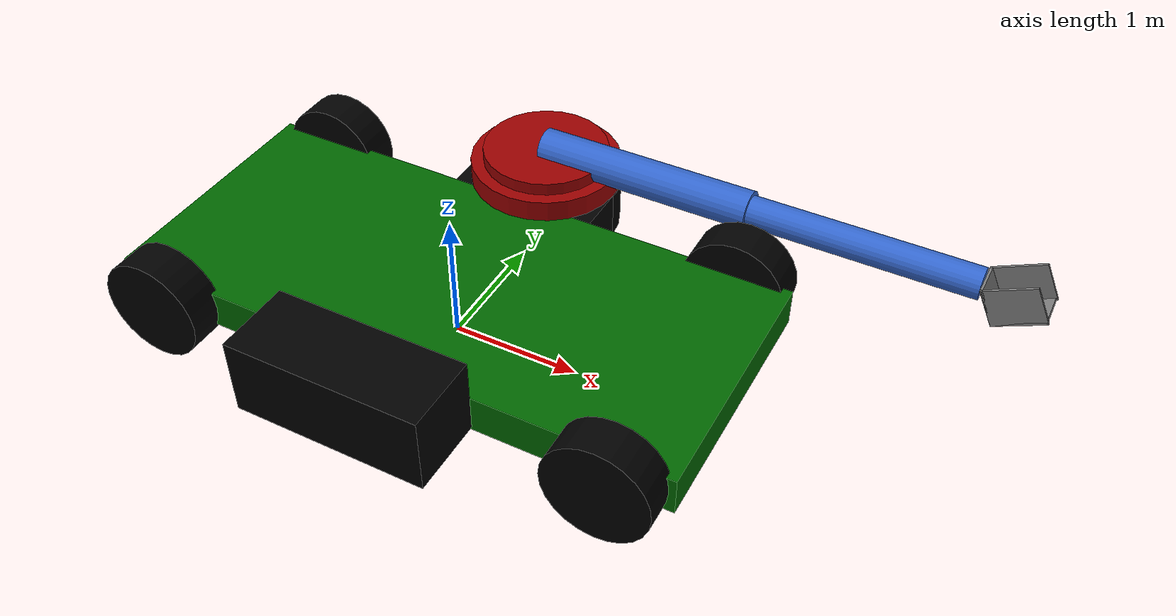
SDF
<?xml version='1.0'?>
<sdf version='1.7'>
  <model name='greendigger_complete'>
    <static>false</static>
    <link name='base_link'>
      <pose>0 0 0.38 0 0 0</pose>
      <inertial>
        <mass>500.0</mass>
        <inertia><ixx>50.0</ixx><ixy>0</ixy><ixz>0</ixz><iyy>50.0</iyy><iyz>0</iyz><izz>50.0</izz></inertia>
      </inertial>
      <visual name='chassis_visual'>
        <geometry><box><size>4.5 2.0 0.3</size></box></geometry>
        <material><ambient>0.0 0.35 0.0 1</ambient><diffuse>0.0 0.4 0.0 1</diffuse></material>
      </visual>
      <visual name='side_pivot_extension_base'>
        <pose>0 1.2 -0.05 0 0 0</pose>
        <geometry><box><size>1.2 0.4 0.4</size></box></geometry>
        <material><ambient>0.0 0.0 0.0 1</ambient><diffuse>0.0 0.0 0.0 1</diffuse></material>
      </visual>

      <visual name='side_pivot_extension_round'>
        <pose>0 1.4 -0.05 0 0 0</pose>
        <geometry><cylinder><radius>0.6</radius><length>0.4</length></cylinder></geometry>
        <material><ambient>0.0 0.0 0.0 1</ambient><diffuse>0.0 0.0 0.0 1</diffuse></material>
      </visual>
      <collision name='chassis_collision'>
        <geometry><box><size>4.5 2.0 0.3</size></box></geometry>
      </collision>
    </link>

    <link name='ballast_link'>
      <pose>0 -1.3 0.55 0 0 0</pose>
      <inertial>
        <mass>200.0</mass>
        <inertia><ixx>20.0</ixx><ixy>0</ixy><ixz>0</ixz><iyy>20.0</iyy><iyz>0</iyz><izz>20.0</izz></inertia>
      </inertial>
      <visual name='ballast_visual'>
        <geometry><box><size>1.5 0.6 0.6</size></box></geometry>
        <material><ambient>0.0 0.0 0.0 1</ambient></material>
      </visual>
      <collision name='ballast_collision'>
        <geometry><box><size>1.5 0.6 0.6</size></box></geometry>
      </collision>
    </link>

    <joint name='ballast_joint' type='fixed'>
      <parent>base_link</parent>
      <child>ballast_link</child>
    </joint>

    <link name='wheel_fl'>
      <pose>1.8 1.1 0.4 1.5708 0 0</pose>
      <inertial><mass>2.0</mass><inertia><ixx>0.2</ixx><ixy>0</ixy><ixz>0</ixz><iyy>0.2</iyy><iyz>0</iyz><izz>0.2</izz></inertia></inertial>
      <visual name='visual'><geometry><cylinder><radius>0.4</radius><length>0.3</length></cylinder></geometry><material><ambient>0 0 0 1</ambient></material></visual>
      <collision name='collision'>
        <geometry><cylinder><radius>0.4</radius><length>0.3</length></cylinder></geometry>
        <surface>
          <friction>
            <ode>
              <mu>1.0</mu>
              <mu2>1.0</mu2>
            </ode>
          </friction>
        </surface>
      </collision>
    </link>

    <link name='wheel_fr'>
      <pose>1.8 -1.1 0.4 1.5708 0 0</pose>
      <inertial><mass>2.0</mass><inertia><ixx>0.2</ixx><ixy>0</ixy><ixz>0</ixz><iyy>0.2</iyy><iyz>0</iyz><izz>0.2</izz></inertia></inertial>
      <visual name='visual'><geometry><cylinder><radius>0.4</radius><length>0.3</length></cylinder></geometry><material><ambient>0 0 0 1</ambient></material></visual>
      <collision name='collision'>
        <geometry><cylinder><radius>0.4</radius><length>0.3</length></cylinder></geometry>
        <surface>
          <friction>
            <ode>
              <mu>1.0</mu>
              <mu2>1.0</mu2>
            </ode>
          </friction>
        </surface>
      </collision>
    </link>

    <link name='wheel_rl'>
      <pose>-1.8 1.1 0.4 1.5708 0 0</pose>
      <inertial><mass>2.0</mass><inertia><ixx>0.2</ixx><ixy>0</ixy><ixz>0</ixz><iyy>0.2</iyy><iyz>0</iyz><izz>0.2</izz></inertia></inertial>
      <visual name='visual'><geometry><cylinder><radius>0.4</radius><length>0.3</length></cylinder></geometry><material><ambient>0 0 0 1</ambient></material></visual>
      <collision name='collision'>
        <geometry><cylinder><radius>0.4</radius><length>0.3</length></cylinder></geometry>
        <surface>
          <friction>
            <ode>
              <mu>1.0</mu>
              <mu2>1.0</mu2>
            </ode>
          </friction>
        </surface>
      </collision>
    </link>

    <link name='wheel_rr'>
      <pose>-1.8 -1.1 0.4 1.5708 0 0</pose>
      <inertial><mass>2.0</mass><inertia><ixx>0.2</ixx><ixy>0</ixy><ixz>0</ixz><iyy>0.2</iyy><iyz>0</iyz><izz>0.2</izz></inertia></inertial>
      <visual name='visual'><geometry><cylinder><radius>0.4</radius><length>0.3</length></cylinder></geometry><material><ambient>0 0 0 1</ambient></material></visual>
      <collision name='collision'>
        <geometry><cylinder><radius>0.4</radius><length>0.3</length></cylinder></geometry>
        <surface>
          <friction>
            <ode>
              <mu>1.0</mu>
              <mu2>1.0</mu2>
            </ode>
          </friction>
        </surface>
      </collision>
    </link>

    <joint name='j_fl' type='revolute'>
      <parent>base_link</parent><child>wheel_fl</child>
      <axis><xyz>0 0 1</xyz><dynamics><damping>500.0</damping><friction>500.0</friction></dynamics></axis>
    </joint>
    <joint name='j_fr' type='revolute'>
      <parent>base_link</parent><child>wheel_fr</child>
      <axis><xyz>0 0 1</xyz><dynamics><damping>500.0</damping><friction>500.0</friction></dynamics></axis>
    </joint>
    <joint name='j_rl' type='revolute'>
      <parent>base_link</parent><child>wheel_rl</child>
      <axis><xyz>0 0 1</xyz><dynamics><damping>500.0</damping><friction>500.0</friction></dynamics></axis>
    </joint>
    <joint name='j_rr' type='revolute'>
      <parent>base_link</parent><child>wheel_rr</child>
      <axis><xyz>0 0 1</xyz><dynamics><damping>500.0</damping><friction>500.0</friction></dynamics></axis>
    </joint>

    <link name='slew_disk'>
      <pose>0 1.4 0.6 0 0 0</pose>
      <inertial>
        <mass>5.0</mass>
        <inertia><ixx>0.5</ixx><ixy>0</ixy><ixz>0</ixz><iyy>0.5</iyy><iyz>0</iyz><izz>0.5</izz></inertia>
      </inertial>
      <visual name='slew_base_vis'>
        <geometry><cylinder><radius>0.6</radius><length>0.2</length></cylinder></geometry>
        <material><ambient>0.5 0.0 0.0 1</ambient><diffuse>0.6 0.0 0.0 1</diffuse></material>
      </visual>
      <visual name='slew_top_vis'>
        <pose>0 0 0.15 0 0 0</pose>
        <geometry><cylinder><radius>0.5</radius><length>0.1</length></cylinder></geometry>
        <material><ambient>0.5 0.0 0.0 1</ambient><diffuse>0.6 0.0 0.0 1</diffuse></material>
      </visual>
      <collision name='slew_collision'>
        <geometry><cylinder><radius>0.6</radius><length>0.3</length></cylinder></geometry>
      </collision>
    </link>

    <joint name='slew_joint' type='revolute'>
      <parent>base_link</parent>
      <child>slew_disk</child>
      <axis>
        <xyz>0 0 1</xyz>
        <limit><lower>-3.1415</lower><upper>3.1415</upper><effort>30000</effort><velocity>1.0</velocity></limit>
        <dynamics><damping>20.0</damping><friction>15.0</friction></dynamics>
      </axis>
    </joint>

    <link name="camera_link">
    <pose>0.5 1.56 0.75 0 0 0</pose>

    <inertial>
      <mass>0.2</mass>
      <inertia>
        <ixx>0.001</ixx>
        <iyy>0.001</iyy>
        <izz>0.001</izz>
        <ixy>0</ixy>
        <ixz>0</ixz>
        <iyz>0</iyz>
      </inertia>
    </inertial>

    <visual name="camera_visual">
      <geometry>
        <box>
          <size>0.12 0.08 0.08</size>
        </box>
      </geometry>
      <material>
        <ambient>0 0 0 1</ambient>
        <diffuse>0 0 0 1</diffuse>
      </material>
    </visual>

    <collision name="camera_collision">
      <geometry>
        <box>
          <size>0.12 0.08 0.08</size>
        </box>
      </geometry>
    </collision>

    <sensor name="camera" type="camera">
      <pose>0 0 0 0 0 0</pose>

      <update_rate>30</update_rate>

      <camera>
        <horizontal_fov>1.483</horizontal_fov>

        <image>
          <width>640</width>
          <height>480</height>
          <format>R8G8B8</format>
        </image>

        <clip>
          <near>0.1</near>
          <far>100</far>
        </clip>
      </camera>

      <always_on>true</always_on>
      <visualize>true</visualize>
    </sensor>
  </link>

  <joint name="camera_mount_joint" type="fixed">
    <parent>slew_disk</parent>
    <child>camera_link</child>
  </joint>

    <link name="arm_segment_1">
      <pose>0.865 1.4 0.8 0 1.570796 0</pose>
      <inertial>
        <mass>20.0</mass>
        <inertia><ixx>0.5</ixx><iyy>5.0</iyy><izz>5.0</izz><ixy>0</ixy><ixz>0</ixz><iyz>0</iyz></inertia>
      </inertial>
      <visual name="seg1_visual">
        <geometry><cylinder><radius>0.15</radius><length>1.73</length></cylinder></geometry>
        <material><ambient>0.1 0.2 0.5 1</ambient><diffuse>0.2 0.4 0.8 1</diffuse></material>
      </visual>
      <collision name="seg1_collision">
        <geometry><cylinder><radius>0.15</radius><length>1.73</length></cylinder></geometry>
      </collision>
    </link>

    <joint name="shoulder_joint" type="revolute">
      <parent>slew_disk</parent>
      <child>arm_segment_1</child>
      <pose>0 0 -0.865 0 0 0</pose>
      <axis>
        <xyz>0 1 0</xyz>
        <limit><lower>-1.57</lower><upper>1.57</upper><effort>5000</effort><velocity>1</velocity></limit>
      </axis>
    </joint>

    <link name="arm_segment_2">
      <pose>2.595 1.4 0.8 0 1.570796 0</pose>
      <inertial>
        <mass>15.0</mass>
        <inertia><ixx>0.4</ixx><iyy>4.0</iyy><izz>4.0</izz><ixy>0</ixy><ixz>0</ixz><iyz>0</iyz></inertia>
      </inertial>
      <visual name="seg2_visual">
        <geometry><cylinder><radius>0.12</radius><length>1.73</length></cylinder></geometry>
        <material><ambient>0.1 0.2 0.5 1</ambient><diffuse>0.2 0.4 0.8 1</diffuse></material>
      </visual>
      <collision name="seg2_collision">
        <geometry><cylinder><radius>0.12</radius><length>1.73</length></cylinder></geometry>
      </collision>
    </link>

    <joint name="elbow_joint" type="revolute">
      <parent>arm_segment_1</parent>
      <child>arm_segment_2</child>
      <pose>0 0 -0.865 0 0 0</pose>
      <axis>
        <xyz>0 1 0</xyz>
        <limit><lower>-3.1415</lower><upper>3.1415</upper><effort>2000</effort><velocity>0.5</velocity></limit>
      </axis>
    </joint>

    <link name="front_shovel_block">
      <pose>3.71 1.4 0.8 0 -0.45 0</pose>
      <inertial>
        <mass>5.0</mass>
        <inertia><ixx>0.1</ixx><iyy>0.1</iyy><izz>0.1</izz><ixy>0</ixy><ixz>0</ixz><iyz>0</iyz></inertia>
      </inertial>

      <visual name="shovel_back">
        <pose>-0.19 0 0 0 0 0</pose>
        <geometry><box><size>0.02 0.3 0.3</size></box></geometry>
        <material><ambient>0.4 0.4 0.4 1</ambient><diffuse>0.5 0.5 0.5 1</diffuse></material>
      </visual>
      <visual name="shovel_bottom">
        <pose>0.0 0 -0.14 0 0 0</pose>
        <geometry><box><size>0.38 0.3 0.02</size></box></geometry>
        <material><ambient>0.4 0.4 0.4 1</ambient><diffuse>0.5 0.5 0.5 1</diffuse></material>
      </visual>
      <visual name="shovel_side_left">
        <pose>0.0 0.14 0 0 0 0</pose>
        <geometry><box><size>0.4 0.02 0.3</size></box></geometry>
        <material><ambient>0.4 0.4 0.4 1</ambient><diffuse>0.5 0.5 0.5 1</diffuse></material>
      </visual>
      <visual name="shovel_side_right">
        <pose>0.0 -0.14 0 0 0 0</pose>
        <geometry><box><size>0.4 0.02 0.3</size></box></geometry>
        <material><ambient>0.4 0.4 0.4 1</ambient><diffuse>0.5 0.5 0.5 1</diffuse></material>
      </visual>
    </link>

    <joint name="shovel_joint" type="fixed">
      <parent>arm_segment_2</parent>
      <child>front_shovel_block</child>
      <pose>-0.25 0 0 0 0 0</pose>
    </joint>

    <plugin filename="gz-sim-joint-state-publisher-system" name="gz::sim::systems::JointStatePublisher">
      <joint_name>slew_joint</joint_name>
      <topic>slew_observer</topic>
    </plugin>
    <plugin filename="gz-sim-joint-controller-system" name="gz::sim::systems::JointController">
      <joint_name>slew_joint</joint_name>
      <topic>slew_ctrl</topic>
    </plugin>
    <plugin filename="gz-sim-joint-state-publisher-system" name="gz::sim::systems::JointStatePublisher">
      <joint_name>shoulder_joint</joint_name>
      <topic>shoulder_observer</topic>
    </plugin>
    <plugin filename="gz-sim-joint-controller-system" name="gz::sim::systems::JointController">
      <joint_name>shoulder_joint</joint_name>
      <topic>shoulder_ctrl</topic>
    </plugin>
    <plugin filename="gz-sim-joint-state-publisher-system" name="gz::sim::systems::JointStatePublisher">
      <joint_name>elbow_joint</joint_name>
      <topic>elbow_observer</topic>
    </plugin>
    <plugin filename="gz-sim-joint-controller-system" name="gz::sim::systems::JointController">
      <joint_name>elbow_joint</joint_name>
      <topic>elbow_ctrl</topic>
    </plugin>
    <plugin filename="gz-sim-sensors-system" name="gz::sim::systems::Sensors">
    </plugin>

  </model>
</sdf>
